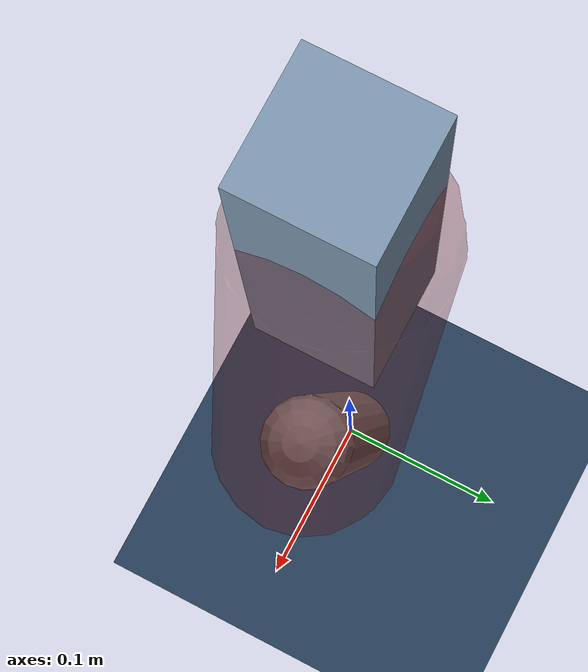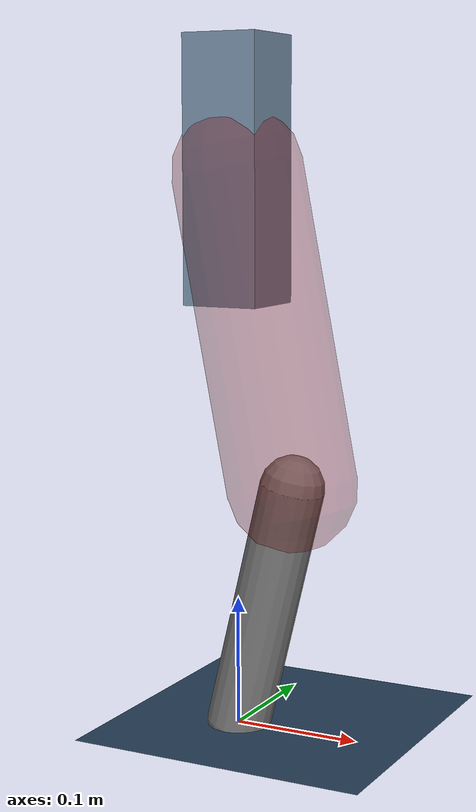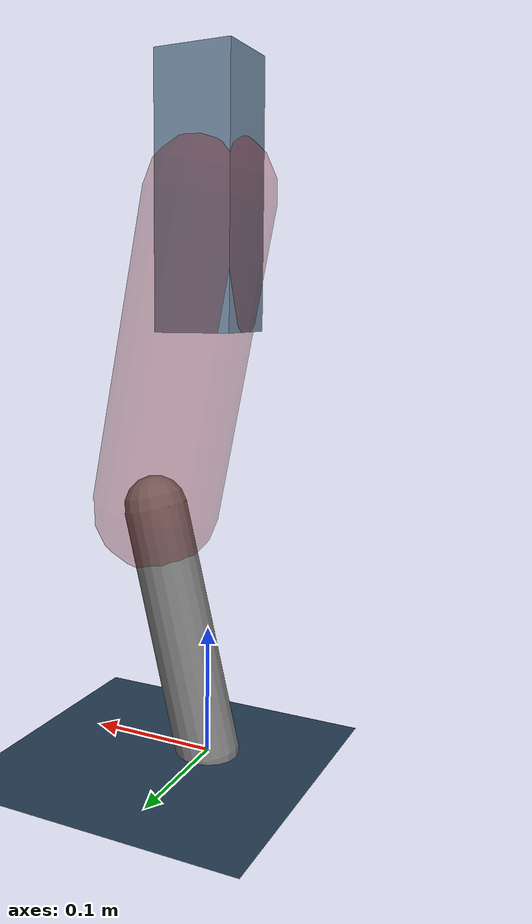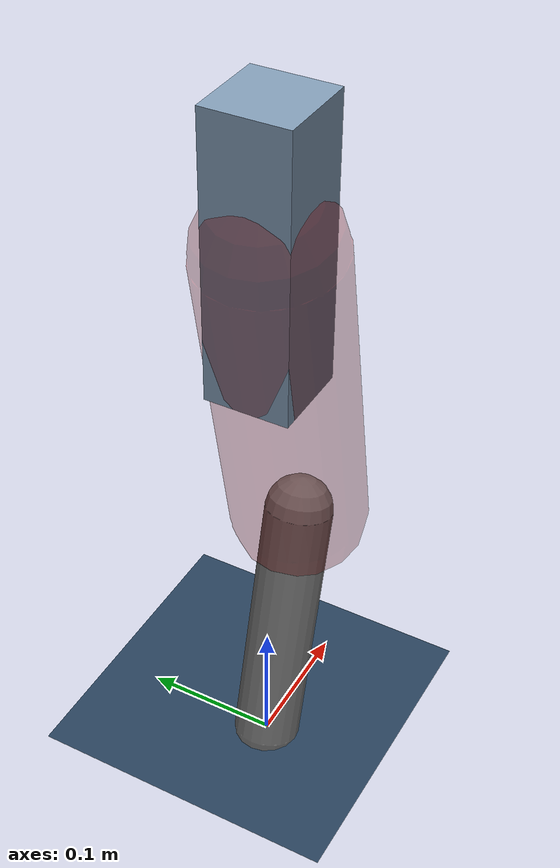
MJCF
<mujoco model="Hopper2D">
	<compiler inertiafromgeom="true" angle="radian" />
	<option timestep="0.001" integrator="implicit" cone="elliptic" solver="Newton" tolerance="1e-10" />

	<default>
		<geom contype="1" conaffinity="1" condim="3" friction="2 0.005 0.0001" solref="0.005 1" />
		<joint limited="true" damping="0.1" />
	</default>

	<asset>
		<texture name="skybox" type="skybox" builtin="gradient" rgb1=".4 .6 .8" rgb2="0 0 0" width="800" height="800" />
		<texture name="grid" type="2d" builtin="checker" rgb1=".1 .2 .3" rgb2=".2 .3 .4" width="300" height="300" mark="edge" markrgb=".2 .3 .4" />
		<material name="ground" texture="grid" texrepeat="1 1" texuniform="true" reflectance="0.1" />
		<material name="leg" rgba="0.5 0.6 0.7 1" />
	</asset>

	<worldbody>

		<geom name="floor" type="plane" size="5 5 0.25" material="ground" />

		<light directional="false" diffuse="0.8 0.8 0.8" specular="0.3 0.3 0.3" pos="0 0 2" dir="0 0 -1" />
		<light mode="targetbodycom" target="base" directional="false" diffuse="0.8 0.8 0.8" specular="0.3 0.3 0.3" pos="0 0 2" dir="0 0 -1" />

		<camera name="fixed" pos="0 -2 1" xyaxes="1 0 0 0 0 1" />
		<camera name="tracking" mode="trackcom" pos="0 -3 1" />

		<body name="root" pos="0 0 0.4294508234961745">
			<joint name="slide_x" type="slide" axis="1 0 0" range="-100 100" />
			<joint name="slide_z" type="slide" axis="0 0 1" range="0 10" />

			<body name="base" pos="0 0 0">
				<geom name="torso" type="box" size="0.03 0.03 0.1" mass="1.71" material="leg" />

				<body name="link1" pos="0 0 0" euler="0 1.377999010576628 0">
					<joint type="hinge" axis="0 -1 0" pos="0 0 0" name="hinge1" limited="true" range="-3.14 3.14" stiffness="0" damping="0.1" />
					<geom name="thigh" type="capsule" fromto="0 0 0 0.24194190971205856 0 0" size="0.05" rgba="0.5 0 0 0.3" mass="0.8355547742801465" />

					<body name="link2" pos="0.24194190971205856 0 0" euler="0 0.4297175065727218 0">
						<joint type="hinge" axis="0 -1 0" pos="0 0 0" name="hinge2" limited="true" range="-3.14 3.14" stiffness="0" damping="0.1" />
						<geom name="shank" type="capsule" fromto="0 0 0 0.19750891378411597 0 0" size="0.025" mass="0.39880713102729276" />

					</body>
				</body>
			</body>
		</body>
	</worldbody>

	<actuator>
		<motor name="torque1" joint="hinge1" ctrlrange="-36.8250672913913 36.8250672913913" ctrllimited="true" gear="1" />
		<motor name="torque2" joint="hinge2" ctrlrange="-83.2837688134635 83.2837688134635" ctrllimited="true" gear="1" />
	</actuator>
</mujoco>
